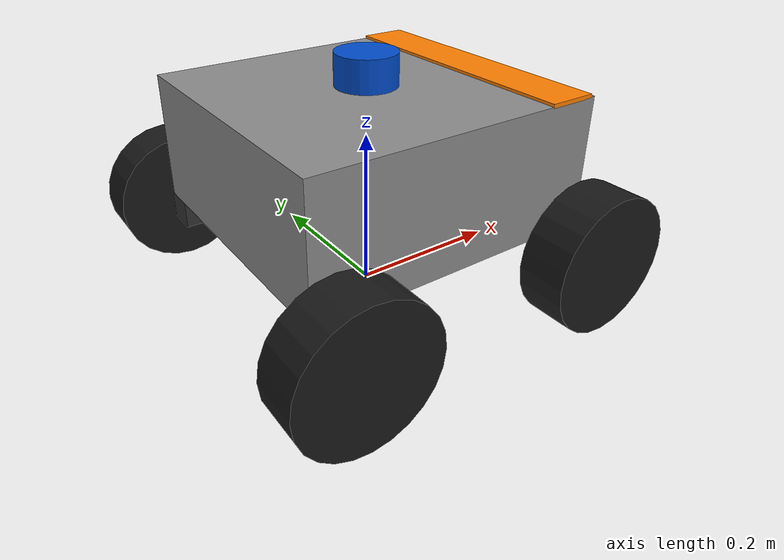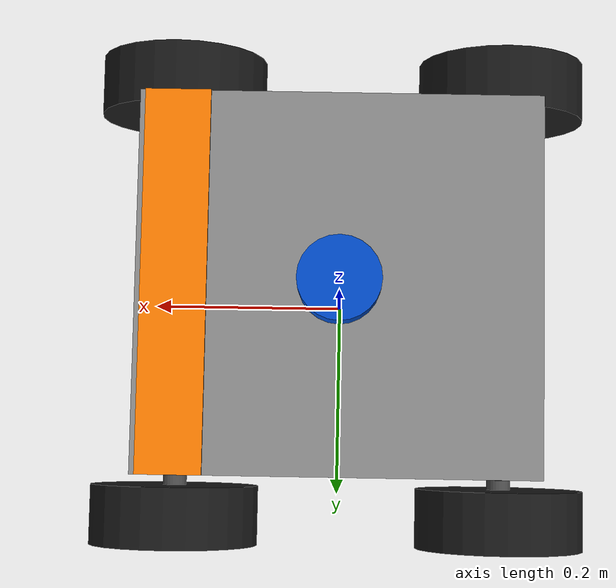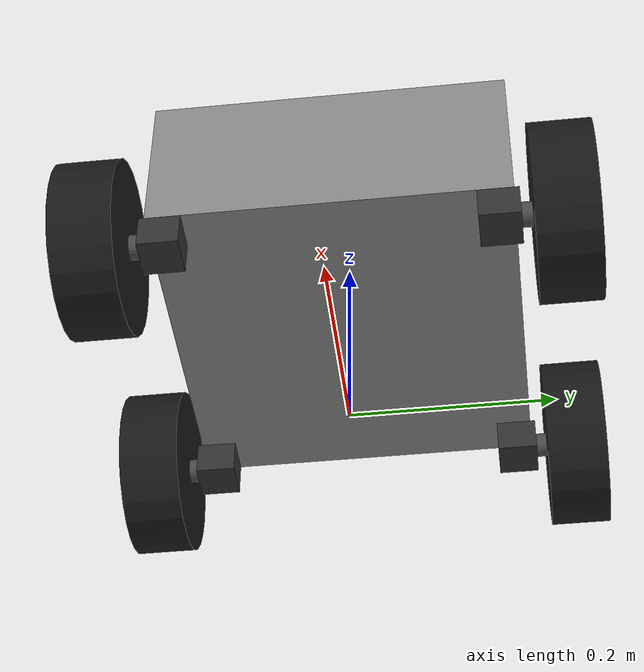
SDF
<?xml version="1.0"?>
<sdf version="1.9">
  <model name="sim_robot">
    <!-- base_link (centro do chassi). z=0.1825 -> rodas tocam o chão
         (centro da roda em z=0.085=raio; mancal 3.5cm entre chassi e eixo). -->
    <pose>0 0 0.1825 0 0 0</pose>

    <!-- ====== base_link (chassi 0.37 x 0.35 x 0.16) ====== -->
    <link name="base_link">
      <inertial>
        <mass>15.46</mass>
        <!-- Caixa 0.37×0.35×0.16, m=15.46 -->
        <inertia>
          <ixx>0.19</ixx><iyy>0.21</iyy><izz>0.33</izz>
          <ixy>0</ixy><ixz>0</ixz><iyz>0</iyz>
        </inertia>
      </inertial>
      <visual name="body_visual">
        <geometry><box><size>0.37 0.35 0.16</size></box></geometry>
        <material>
          <ambient>0.5 0.5 0.5 1</ambient>
          <diffuse>0.55 0.55 0.55 1</diffuse>
          <specular>0.2 0.2 0.2 1</specular>
        </material>
      </visual>
      <collision name="body_collision">
        <geometry><box><size>0.37 0.35 0.16</size></box></geometry>
      </collision>
      <!-- Marca da frente (+x): faixa laranja no topo pra ver a orientação -->
      <visual name="front_marker">
        <pose>0.15 0 0.081 0 0 0</pose>
        <geometry><box><size>0.06 0.35 0.005</size></box></geometry>
        <material><ambient>0.9 0.45 0 1</ambient><diffuse>1 0.5 0 1</diffuse></material>
      </visual>

      <!-- frente-esq -->
      <visual name="mancal_fl"><pose>0.165 0.16 -0.0975 0 0 0</pose>
        <geometry><box><size>0.04 0.04 0.035</size></box></geometry>
        <material><diffuse>0.2 0.2 0.2 1</diffuse></material></visual>
      <visual name="axle_fl"><pose>0.165 0.185 -0.0975 -1.5707 0 0</pose>
        <geometry><cylinder><radius>0.012</radius><length>0.05</length></cylinder></geometry>
        <material><diffuse>0.3 0.3 0.3 1</diffuse></material></visual>
      <!-- frente-dir -->
      <visual name="mancal_fr"><pose>0.165 -0.16 -0.0975 0 0 0</pose>
        <geometry><box><size>0.04 0.04 0.035</size></box></geometry>
        <material><diffuse>0.2 0.2 0.2 1</diffuse></material></visual>
      <visual name="axle_fr"><pose>0.165 -0.185 -0.0975 -1.5707 0 0</pose>
        <geometry><cylinder><radius>0.012</radius><length>0.05</length></cylinder></geometry>
        <material><diffuse>0.3 0.3 0.3 1</diffuse></material></visual>
      <!-- trás-esq -->
      <visual name="mancal_rl"><pose>-0.165 0.16 -0.0975 0 0 0</pose>
        <geometry><box><size>0.04 0.04 0.035</size></box></geometry>
        <material><diffuse>0.2 0.2 0.2 1</diffuse></material></visual>
      <visual name="axle_rl"><pose>-0.165 0.185 -0.0975 -1.5707 0 0</pose>
        <geometry><cylinder><radius>0.012</radius><length>0.05</length></cylinder></geometry>
        <material><diffuse>0.3 0.3 0.3 1</diffuse></material></visual>
      <!-- trás-dir -->
      <visual name="mancal_rr"><pose>-0.165 -0.16 -0.0975 0 0 0</pose>
        <geometry><box><size>0.04 0.04 0.035</size></box></geometry>
        <material><diffuse>0.2 0.2 0.2 1</diffuse></material></visual>
      <visual name="axle_rr"><pose>-0.165 -0.185 -0.0975 -1.5707 0 0</pose>
        <geometry><cylinder><radius>0.012</radius><length>0.05</length></cylinder></geometry>
        <material><diffuse>0.3 0.3 0.3 1</diffuse></material></visual>
    </link>

    <link name="front_left_wheel">
      <pose>0.165 0.22 -0.0975 -1.5707 0 0</pose>
      <inertial><mass>1.5</mass>
        <inertia><ixx>0.005</ixx><iyy>0.005</iyy><izz>0.009</izz><ixy>0</ixy><ixz>0</ixz><iyz>0</iyz></inertia>
      </inertial>
      <visual name="v"><geometry><cylinder><radius>0.085</radius><length>0.06</length></cylinder></geometry>
        <material><diffuse>0.1 0.1 0.1 1</diffuse></material></visual>
      <collision name="c"><geometry><cylinder><radius>0.085</radius><length>0.06</length></cylinder></geometry>
        <surface><friction><ode><mu>1.2</mu><mu2>0.1</mu2><fdir1>1 0 0</fdir1></ode></friction></surface></collision>
    </link>
    <joint name="front_left_wheel_joint" type="revolute">
      <parent>base_link</parent><child>front_left_wheel</child>
      <axis><xyz>0 0 1</xyz><limit><lower>-1e16</lower><upper>1e16</upper></limit></axis>
    </joint>

    <link name="front_right_wheel">
      <pose>0.165 -0.22 -0.0975 -1.5707 0 0</pose>
      <inertial><mass>1.5</mass>
        <inertia><ixx>0.005</ixx><iyy>0.005</iyy><izz>0.009</izz><ixy>0</ixy><ixz>0</ixz><iyz>0</iyz></inertia>
      </inertial>
      <visual name="v"><geometry><cylinder><radius>0.085</radius><length>0.06</length></cylinder></geometry>
        <material><diffuse>0.1 0.1 0.1 1</diffuse></material></visual>
      <collision name="c"><geometry><cylinder><radius>0.085</radius><length>0.06</length></cylinder></geometry>
        <surface><friction><ode><mu>1.2</mu><mu2>0.1</mu2><fdir1>1 0 0</fdir1></ode></friction></surface></collision>
    </link>
    <joint name="front_right_wheel_joint" type="revolute">
      <parent>base_link</parent><child>front_right_wheel</child>
      <axis><xyz>0 0 1</xyz><limit><lower>-1e16</lower><upper>1e16</upper></limit></axis>
    </joint>

    <link name="rear_left_wheel">
      <pose>-0.165 0.22 -0.0975 -1.5707 0 0</pose>
      <inertial><mass>1.5</mass>
        <inertia><ixx>0.005</ixx><iyy>0.005</iyy><izz>0.009</izz><ixy>0</ixy><ixz>0</ixz><iyz>0</iyz></inertia>
      </inertial>
      <visual name="v"><geometry><cylinder><radius>0.085</radius><length>0.06</length></cylinder></geometry>
        <material><diffuse>0.1 0.1 0.1 1</diffuse></material></visual>
      <collision name="c"><geometry><cylinder><radius>0.085</radius><length>0.06</length></cylinder></geometry>
        <surface><friction><ode><mu>1.2</mu><mu2>0.1</mu2><fdir1>1 0 0</fdir1></ode></friction></surface></collision>
    </link>
    <joint name="rear_left_wheel_joint" type="revolute">
      <parent>base_link</parent><child>rear_left_wheel</child>
      <axis><xyz>0 0 1</xyz><limit><lower>-1e16</lower><upper>1e16</upper></limit></axis>
    </joint>

    <link name="rear_right_wheel">
      <pose>-0.165 -0.22 -0.0975 -1.5707 0 0</pose>
      <inertial><mass>1.5</mass>
        <inertia><ixx>0.005</ixx><iyy>0.005</iyy><izz>0.009</izz><ixy>0</ixy><ixz>0</ixz><iyz>0</iyz></inertia>
      </inertial>
      <visual name="v"><geometry><cylinder><radius>0.085</radius><length>0.06</length></cylinder></geometry>
        <material><diffuse>0.1 0.1 0.1 1</diffuse></material></visual>
      <collision name="c"><geometry><cylinder><radius>0.085</radius><length>0.06</length></cylinder></geometry>
        <surface><friction><ode><mu>1.2</mu><mu2>0.1</mu2><fdir1>1 0 0</fdir1></ode></friction></surface></collision>
    </link>
    <joint name="rear_right_wheel_joint" type="revolute">
      <parent>base_link</parent><child>rear_right_wheel</child>
      <axis><xyz>0 0 1</xyz><limit><lower>-1e16</lower><upper>1e16</upper></limit></axis>
    </joint>

    <!-- ====== LiDAR 2D, assentado no TOPO do chassi ======
         z_rel = body_height/2 + meia-altura-do-lidar = 0.08 + 0.02 = 0.10 -->
    <link name="base_laser">
      <pose>0 0 0.10 0 0 0</pose>
      <inertial><mass>0.1</mass>
        <inertia><ixx>0.0001</ixx><iyy>0.0001</iyy><izz>0.0001</izz><ixy>0</ixy><ixz>0</ixz><iyz>0</iyz></inertia>
      </inertial>
      <visual name="lidar_visual">
        <geometry><cylinder><radius>0.038</radius><length>0.04</length></cylinder></geometry>
        <material><diffuse>0.0 0.3 0.8 1</diffuse></material>
      </visual>
      <sensor name="lidar" type="gpu_lidar">
        <update_rate>10</update_rate>
        <topic>scan</topic>
        <always_on>1</always_on>
        <visualize>true</visualize>
        <gz_frame_id>base_laser</gz_frame_id>
        <lidar>
          <scan>
            <horizontal>
              <samples>455</samples>
              <resolution>1</resolution>
              <min_angle>-3.14159</min_angle>
              <max_angle>3.14159</max_angle>
            </horizontal>
          </scan>
          <range>
            <min>0.10</min>
            <max>12.0</max>
            <resolution>0.01</resolution>
          </range>
        </lidar>
      </sensor>
    </link>
    <joint name="laser_joint" type="fixed">
      <parent>base_link</parent>
      <child>base_laser</child>
    </joint>

    <link name="imu_link">
      <pose relative_to="base_link">0 0 0 0 0 0</pose>
      <inertial>
        <mass>0.01</mass>
        <inertia>
          <ixx>1e-6</ixx><iyy>1e-6</iyy><izz>1e-6</izz>
          <ixy>0</ixy><ixz>0</ixz><iyz>0</iyz>
        </inertia>
      </inertial>
      <sensor name="imu" type="imu">
        <always_on>1</always_on>
        <update_rate>50</update_rate>
        <topic>imu</topic>
        <gz_frame_id>base_link</gz_frame_id>
      </sensor>
    </link>
    <joint name="imu_joint" type="fixed">
      <parent>base_link</parent>
      <child>imu_link</child>
    </joint>

    <!-- ====== Plugins ====== -->
    <!-- Skid-steer: 2 juntas de cada lado. wheel_separation = track (centros) = 0.44 -->
    <plugin filename="gz-sim-diff-drive-system" name="gz::sim::systems::DiffDrive">
      <left_joint>front_left_wheel_joint</left_joint>
      <left_joint>rear_left_wheel_joint</left_joint>
      <right_joint>front_right_wheel_joint</right_joint>
      <right_joint>rear_right_wheel_joint</right_joint>
      <wheel_separation>0.44</wheel_separation>
      <wheel_radius>0.085</wheel_radius>
      <odom_publish_frequency>30</odom_publish_frequency>
      <topic>cmd_vel</topic>
      <odom_topic>odom</odom_topic>
      <frame_id>odom</frame_id>
      <child_frame_id>base_link</child_frame_id>
      <tf_topic>/tf</tf_topic>
      <max_linear_acceleration>1.5</max_linear_acceleration>
    </plugin>

    <plugin filename="gz-sim-joint-state-publisher-system"
            name="gz::sim::systems::JointStatePublisher">
      <topic>joint_states</topic>
      <joint_name>front_left_wheel_joint</joint_name>
      <joint_name>front_right_wheel_joint</joint_name>
      <joint_name>rear_left_wheel_joint</joint_name>
      <joint_name>rear_right_wheel_joint</joint_name>
    </plugin>

    <plugin filename="gz-sim-pose-publisher-system"
            name="gz::sim::systems::PosePublisher">
      <publish_link_pose>true</publish_link_pose>
      <publish_sensor_pose>true</publish_sensor_pose>
      <publish_collision_pose>false</publish_collision_pose>
      <publish_visual_pose>false</publish_visual_pose>
      <publish_nested_model_pose>false</publish_nested_model_pose>
      <use_pose_vector_msg>true</use_pose_vector_msg>
      <static_publisher>false</static_publisher>
      <static_update_frequency>1</static_update_frequency>
    </plugin>
  </model>
</sdf>
